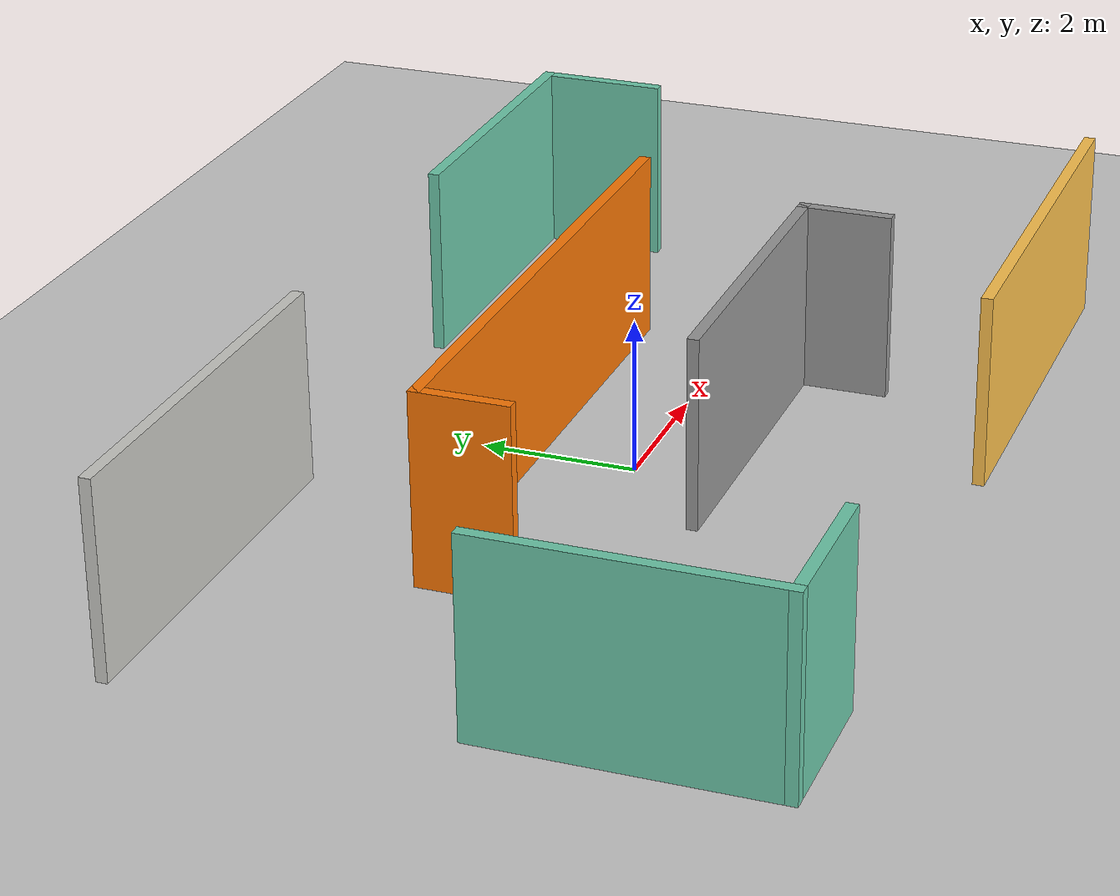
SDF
<sdf version="1.7">
 <world name="default">
  <light name="sun" type="directional">
   <pose>0 0 10 0 -0 0</pose>
   <diffuse>0.8 0.8 0.8 1</diffuse>
   <specular>0.2 0.2 0.2 1</specular>
   <attenuation>
    <range>1000</range>
    <constant>0.9</constant>
    <linear>0.01</linear>
    <quadratic>0.001</quadratic>
   </attenuation>
   <direction>-0.5 0.1 -0.9</direction>
   <spot><inner_angle>0</inner_angle><outer_angle>0</outer_angle><falloff>0</falloff></spot>
  </light>
  <model name="ground_plane">
   <static>1</static>
   <link name="link">
    <collision name="collision">
     <geometry><plane><normal>0 0 1</normal><size>100 100</size></plane></geometry>
     <surface>
      <contact><collide_bitmask>65535</collide_bitmask></contact>
      <friction><ode><mu>100</mu><mu2>50</mu2></ode></friction>
     </surface>
    </collision>
    <visual name="visual">
     <cast_shadows>0</cast_shadows>
     <geometry><plane><normal>0 0 1</normal><size>100 100</size></plane></geometry>
     <material>
      <script><uri>file://media/materials/scripts/gazebo.material</uri><name>Gazebo/Grey</name></script>
     </material>
    </visual>
   </link>
  </model>
  <gravity>0 0 -9.8</gravity>
  <magnetic_field>6e-06 2.3e-05 -4.2e-05</magnetic_field>
  <atmosphere type="adiabatic"/>
  <physics type="ode">
   <max_step_size>0.001</max_step_size>
   <real_time_factor>1</real_time_factor>
   <real_time_update_rate>1000</real_time_update_rate>
  </physics>
  <scene><ambient>0.4 0.4 0.4 1</ambient><background>0.7 0.7 0.7 1</background><shadows>1</shadows></scene>
  <spherical_coordinates>
   <surface_model>EARTH_WGS84</surface_model>
   <latitude_deg>0</latitude_deg>
   <longitude_deg>0</longitude_deg>
   <elevation>0</elevation>
   <heading_deg>0</heading_deg>
  </spherical_coordinates>
  <model name="bug_world">
   <pose>0.000315 0.000922 0 0 -0 0</pose>
   <link name="Wall_13">
    <collision name="Wall_13_Collision">
     <geometry><box><size>5.75 0.15 2.5</size></box></geometry>
     <pose>0 0 1.25 0 -0 0</pose>
    </collision>
    <visual name="Wall_13_Visual">
     <pose>0 0 1.25 0 -0 0</pose>
     <geometry><box><size>5.75 0.15 2.5</size></box></geometry>
     <material>
      <script><uri>file://media/materials/scripts/gazebo.material</uri><name>Gazebo/Grey</name></script>
      <ambient>1 0.764706 0.305882 1</ambient>
     </material>
     <meta><layer>0</layer></meta>
    </visual>
    <pose>3.87929 -4.11586 0 0 -0 3.14159</pose>
   </link>
   <link name="Wall_17">
    <collision name="Wall_17_Collision">
     <geometry><box><size>2 0.15 2.5</size></box></geometry>
     <pose>0 0 1.25 0 -0 0</pose>
    </collision>
    <visual name="Wall_17_Visual">
     <pose>0 0 1.25 0 -0 0</pose>
     <geometry><box><size>2 0.15 2.5</size></box></geometry>
     <material>
      <script><uri>file://media/materials/scripts/gazebo.material</uri><name>Gazebo/Grey</name></script>
      <ambient>0.435294 0.796078 0.67451 1</ambient>
     </material>
     <meta><layer>0</layer></meta>
    </visual>
    <pose>-5.62999 -4.07563 0 0 -0 3.14159</pose>
   </link>
   <link name="Wall_18">
    <collision name="Wall_18_Collision">
     <geometry><box><size>3.75 0.15 2.5</size></box></geometry>
     <pose>0 0 1.25 0 -0 0</pose>
    </collision>
    <visual name="Wall_18_Visual">
     <pose>0 0 1.25 0 -0 0</pose>
     <geometry><box><size>3.75 0.15 2.5</size></box></geometry>
     <material>
      <script><uri>file://media/materials/scripts/gazebo.material</uri><name>Gazebo/Grey</name></script>
      <ambient>0.435294 0.796078 0.67451 1</ambient>
     </material>
     <meta><layer>0</layer></meta>
    </visual>
    <pose>-6.55499 -2.27563 0 0 -0 1.5708</pose>
   </link>
   <link name="Wall_2">
    <collision name="Wall_2_Collision">
     <geometry><box><size>5.25 0.15 2.5</size></box></geometry>
     <pose>0 0 1.25 0 -0 0</pose>
    </collision>
    <visual name="Wall_2_Visual">
     <pose>0 0 1.25 0 -0 0</pose>
     <geometry><box><size>5.25 0.15 2.5</size></box></geometry>
     <material>
      <script><uri>file://media/materials/scripts/gazebo.material</uri><name>Gazebo/CeilingTiled</name></script>
      <ambient>1 0.764706 0.305882 1</ambient>
     </material>
     <meta><layer>0</layer></meta>
    </visual>
    <pose>-4.16635 3.72843 0 0 -0 0</pose>
   </link>
   <link name="Wall_20">
    <collision name="Wall_20_Collision">
     <geometry><box><size>1.25 0.15 2.5</size></box></geometry>
     <pose>0 0 1.25 0 -0 0</pose>
    </collision>
    <visual name="Wall_20_Visual">
     <pose>0 0 1.25 0 -0 0</pose>
     <geometry><box><size>1.25 0.15 2.5</size></box></geometry>
     <material>
      <script><uri>file://media/materials/scripts/gazebo.material</uri><name>Gazebo/Grey</name></script>
      <ambient>0.996078 0.47451 0.0196078 1</ambient>
     </material>
     <meta><layer>0</layer></meta>
    </visual>
    <pose>-3.59875 0.758557 0 0 -0 1.5708</pose>
   </link>
   <link name="Wall_21">
    <collision name="Wall_21_Collision">
     <geometry><box><size>7.75 0.15 2.5</size></box></geometry>
     <pose>0 0 1.25 0 -0 0</pose>
    </collision>
    <visual name="Wall_21_Visual">
     <pose>0 0 1.25 0 -0 0</pose>
     <geometry><box><size>7.75 0.15 2.5</size></box></geometry>
     <material>
      <script><uri>file://media/materials/scripts/gazebo.material</uri><name>Gazebo/Grey</name></script>
      <ambient>0.996078 0.47451 0.0196078 1</ambient>
     </material>
     <meta><layer>0</layer></meta>
    </visual>
    <pose>0.201255 1.30856 0 0 -0 0</pose>
   </link>
   <link name="Wall_23">
    <collision name="Wall_23_Collision">
     <geometry><box><size>1.25 0.15 2.5</size></box></geometry>
     <pose>0 0 1.25 0 -0 0</pose>
    </collision>
    <visual name="Wall_23_Visual">
     <pose>0 0 1.25 0 -0 0</pose>
     <geometry><box><size>1.25 0.15 2.5</size></box></geometry>
     <material>
      <script><uri>file://media/materials/scripts/gazebo.material</uri><name>Gazebo/Grey</name></script>
      <ambient>1 1 1 1</ambient>
     </material>
     <meta><layer>0</layer></meta>
    </visual>
    <pose>3.1393 -1.73553 0 0 -0 1.5708</pose>
   </link>
   <link name="Wall_24">
    <collision name="Wall_24_Collision">
     <geometry><box><size>4.5 0.15 2.5</size></box></geometry>
     <pose>0 0 1.25 0 -0 0</pose>
    </collision>
    <visual name="Wall_24_Visual">
     <pose>0 0 1.25 0 -0 0</pose>
     <geometry><box><size>4.5 0.15 2.5</size></box></geometry>
     <material>
      <script><uri>file://media/materials/scripts/gazebo.material</uri><name>Gazebo/Grey</name></script>
      <ambient>1 1 1 1</ambient>
     </material>
     <meta><layer>0</layer></meta>
    </visual>
    <pose>0.964301 -1.18553 0 0 -0 3.14159</pose>
   </link>
   <link name="Wall_4">
    <collision name="Wall_4_Collision">
     <geometry><box><size>4.25 0.15 2.5</size></box></geometry>
     <pose>0 0 1.25 0 -0 0</pose>
    </collision>
    <visual name="Wall_4_Visual">
     <pose>0 0 1.25 0 -0 0</pose>
     <geometry><box><size>4.25 0.15 2.5</size></box></geometry>
     <material>
      <script><uri>file://media/materials/scripts/gazebo.material</uri><name>Gazebo/Grey</name></script>
      <ambient>0.435294 0.796078 0.67451 1</ambient>
     </material>
     <meta><layer>0</layer></meta>
    </visual>
    <pose>4.66635 3.70832 0 0 -0 0</pose>
   </link>
   <link name="Wall_5">
    <collision name="Wall_5_Collision">
     <geometry><box><size>1.75 0.15 2.5</size></box></geometry>
     <pose>0 0 1.25 0 -0 0</pose>
    </collision>
    <visual name="Wall_5_Visual">
     <pose>0 0 1.25 0 -0 0</pose>
     <geometry><box><size>1.75 0.15 2.5</size></box></geometry>
     <material>
      <script><uri>file://media/materials/scripts/gazebo.material</uri><name>Gazebo/Grey</name></script>
      <ambient>0.435294 0.796078 0.67451 1</ambient>
     </material>
     <meta><layer>0</layer></meta>
    </visual>
    <pose>6.71635 2.90832 0 0 -0 -1.5708</pose>
   </link>
   <static>1</static>
  </model>
 </world>
</sdf>
